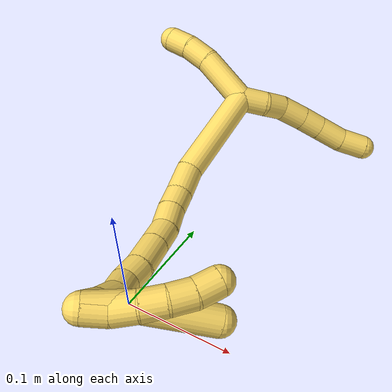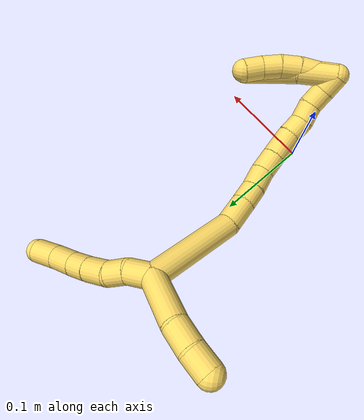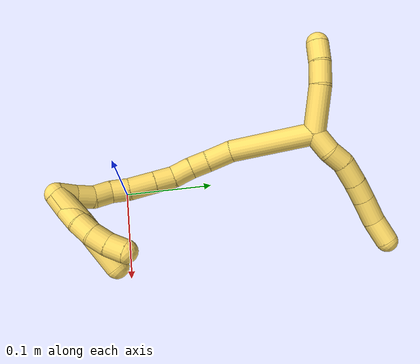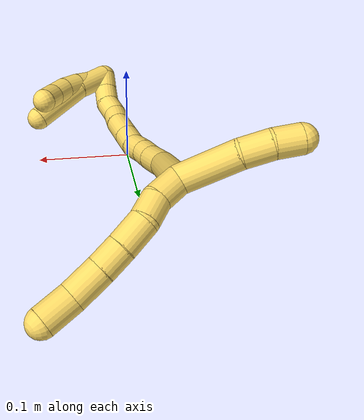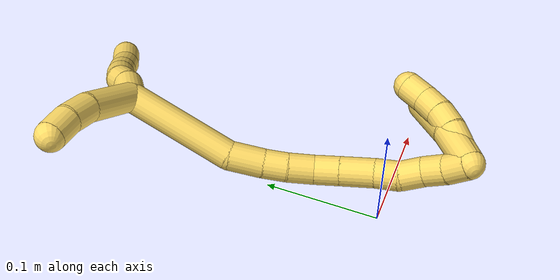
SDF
<sdf version="1.7">
 <world name="default">
  <model name="5">
   <static>0</static>
   <link name="5">
    <collision name="collision-cylinder-e_1_2_8">
     <pose>0.002233 0.000143 0.012327 -0.011601 0.179187 -0.001042</pose>
     <geometry><cylinder><radius>0.0125</radius><length>0.025056</length></cylinder></geometry>
     <surface>
      <friction><ode><mu>1.16</mu><mu2>1.16</mu2><slip1>0</slip1><slip2>0</slip2></ode></friction>
      <contact><ode><kp>1e+06</kp><kd>1</kd><max_vel>0</max_vel><min_depth>0.001</min_depth></ode></contact>
     </surface>
    </collision>
    <visual name="visual-cylinder-e_1_2_8">
     <pose>0.002233 0.000143 0.012327 -0.011601 0.179187 -0.001042</pose>
     <geometry><cylinder><radius>0.0125</radius><length>0.025056</length></cylinder></geometry>
     <material><ambient>1 0.858824 0.4 1</ambient></material>
    </visual>
    <collision name="collision-cylinder-e_2_8_9">
     <pose>0.007531 0.003312 0.034335 -0.302952 0.293433 -0.045108</pose>
     <geometry><cylinder><radius>0.0125</radius><length>0.021193</length></cylinder></geometry>
     <surface>
      <friction><ode><mu>1.16</mu><mu2>1.16</mu2><slip1>0</slip1><slip2>0</slip2></ode></friction>
      <contact><ode><kp>1e+06</kp><kd>1</kd><max_vel>0</max_vel><min_depth>0.001</min_depth></ode></contact>
     </surface>
    </collision>
    <visual name="visual-cylinder-e_2_8_9">
     <pose>0.007531 0.003312 0.034335 -0.302952 0.293433 -0.045108</pose>
     <geometry><cylinder><radius>0.0125</radius><length>0.021193</length></cylinder></geometry>
     <material><ambient>1 0.858824 0.4 1</ambient></material>
    </visual>
    <collision name="collision-cylinder-e_3_9_10">
     <pose>0.016018 0.00623 0.055905 0.009155 0.427888 0.001989</pose>
     <geometry><cylinder><radius>0.0125</radius><length>0.026134</length></cylinder></geometry>
     <surface>
      <friction><ode><mu>1.16</mu><mu2>1.16</mu2><slip1>0</slip1><slip2>0</slip2></ode></friction>
      <contact><ode><kp>1e+06</kp><kd>1</kd><max_vel>0</max_vel><min_depth>0.001</min_depth></ode></contact>
     </surface>
    </collision>
    <visual name="visual-cylinder-e_3_9_10">
     <pose>0.016018 0.00623 0.055905 0.009155 0.427888 0.001989</pose>
     <geometry><cylinder><radius>0.0125</radius><length>0.026134</length></cylinder></geometry>
     <material><ambient>1 0.858824 0.4 1</ambient></material>
    </visual>
    <collision name="collision-cylinder-e_4_10_11">
     <pose>0.026137 0.005355 0.077652 0.077519 0.44344 0.017483</pose>
     <geometry><cylinder><radius>0.0125</radius><length>0.021894</length></cylinder></geometry>
     <surface>
      <friction><ode><mu>1.16</mu><mu2>1.16</mu2><slip1>0</slip1><slip2>0</slip2></ode></friction>
      <contact><ode><kp>1e+06</kp><kd>1</kd><max_vel>0</max_vel><min_depth>0.001</min_depth></ode></contact>
     </surface>
    </collision>
    <visual name="visual-cylinder-e_4_10_11">
     <pose>0.026137 0.005355 0.077652 0.077519 0.44344 0.017483</pose>
     <geometry><cylinder><radius>0.0125</radius><length>0.021894</length></cylinder></geometry>
     <material><ambient>1 0.858824 0.4 1</ambient></material>
    </visual>
    <collision name="collision-cylinder-e_5_11_12">
     <pose>0.03664 0.002949 0.1003 0.127541 0.423076 0.027425</pose>
     <geometry><cylinder><radius>0.0125</radius><length>0.028283</length></cylinder></geometry>
     <surface>
      <friction><ode><mu>1.16</mu><mu2>1.16</mu2><slip1>0</slip1><slip2>0</slip2></ode></friction>
      <contact><ode><kp>1e+06</kp><kd>1</kd><max_vel>0</max_vel><min_depth>0.001</min_depth></ode></contact>
     </surface>
    </collision>
    <visual name="visual-cylinder-e_5_11_12">
     <pose>0.03664 0.002949 0.1003 0.127541 0.423076 0.027425</pose>
     <geometry><cylinder><radius>0.0125</radius><length>0.028283</length></cylinder></geometry>
     <material><ambient>1 0.858824 0.4 1</ambient></material>
    </visual>
    <collision name="collision-cylinder-e_6_12_6">
     <pose>0.045751 0.000141 0.126355 0.087849 0.243287 0.010746</pose>
     <geometry><cylinder><radius>0.0125</radius><length>0.02744</length></cylinder></geometry>
     <surface>
      <friction><ode><mu>1.16</mu><mu2>1.16</mu2><slip1>0</slip1><slip2>0</slip2></ode></friction>
      <contact><ode><kp>1e+06</kp><kd>1</kd><max_vel>0</max_vel><min_depth>0.001</min_depth></ode></contact>
     </surface>
    </collision>
    <visual name="visual-cylinder-e_6_12_6">
     <pose>0.045751 0.000141 0.126355 0.087849 0.243287 0.010746</pose>
     <geometry><cylinder><radius>0.0125</radius><length>0.02744</length></cylinder></geometry>
     <material><ambient>1 0.858824 0.4 1</ambient></material>
    </visual>
    <collision name="collision-cylinder-e_1_2_13">
     <pose>-0.012006 0.016765 -0.016657 -2.35297 -0.470062 1.04438</pose>
     <geometry><cylinder><radius>0.0125</radius><length>0.053015</length></cylinder></geometry>
     <surface>
      <friction><ode><mu>1.16</mu><mu2>1.16</mu2><slip1>0</slip1><slip2>0</slip2></ode></friction>
      <contact><ode><kp>1e+06</kp><kd>1</kd><max_vel>0</max_vel><min_depth>0.001</min_depth></ode></contact>
     </surface>
    </collision>
    <visual name="visual-cylinder-e_1_2_13">
     <pose>-0.012006 0.016765 -0.016657 -2.35297 -0.470062 1.04438</pose>
     <geometry><cylinder><radius>0.0125</radius><length>0.053015</length></cylinder></geometry>
     <material><ambient>1 0.858824 0.4 1</ambient></material>
    </visual>
    <collision name="collision-cylinder-e_2_13_14">
     <pose>-0.027417 0.041116 -0.042501 -2.45133 -0.278313 0.742987</pose>
     <geometry><cylinder><radius>0.0125</radius><length>0.024784</length></cylinder></geometry>
     <surface>
      <friction><ode><mu>1.16</mu><mu2>1.16</mu2><slip1>0</slip1><slip2>0</slip2></ode></friction>
      <contact><ode><kp>1e+06</kp><kd>1</kd><max_vel>0</max_vel><min_depth>0.001</min_depth></ode></contact>
     </surface>
    </collision>
    <visual name="visual-cylinder-e_2_13_14">
     <pose>-0.027417 0.041116 -0.042501 -2.45133 -0.278313 0.742987</pose>
     <geometry><cylinder><radius>0.0125</radius><length>0.024784</length></cylinder></geometry>
     <material><ambient>1 0.858824 0.4 1</ambient></material>
    </visual>
    <collision name="collision-cylinder-e_3_14_5">
     <pose>-0.031861 0.055325 -0.060537 -2.49914 -0.093719 0.280011</pose>
     <geometry><cylinder><radius>0.0125</radius><length>0.0222</length></cylinder></geometry>
     <surface>
      <friction><ode><mu>1.16</mu><mu2>1.16</mu2><slip1>0</slip1><slip2>0</slip2></ode></friction>
      <contact><ode><kp>1e+06</kp><kd>1</kd><max_vel>0</max_vel><min_depth>0.001</min_depth></ode></contact>
     </surface>
    </collision>
    <visual name="visual-cylinder-e_3_14_5">
     <pose>-0.031861 0.055325 -0.060537 -2.49914 -0.093719 0.280011</pose>
     <geometry><cylinder><radius>0.0125</radius><length>0.0222</length></cylinder></geometry>
     <material><ambient>1 0.858824 0.4 1</ambient></material>
    </visual>
    <collision name="collision-cylinder-e_1_2_15">
     <pose>0.023028 -0.033232 -0.025572 2.22666 0.502212 0.960721</pose>
     <geometry><cylinder><radius>0.0125</radius><length>0.09568</length></cylinder></geometry>
     <surface>
      <friction><ode><mu>1.16</mu><mu2>1.16</mu2><slip1>0</slip1><slip2>0</slip2></ode></friction>
      <contact><ode><kp>1e+06</kp><kd>1</kd><max_vel>0</max_vel><min_depth>0.001</min_depth></ode></contact>
     </surface>
    </collision>
    <visual name="visual-cylinder-e_1_2_15">
     <pose>0.023028 -0.033232 -0.025572 2.22666 0.502212 0.960721</pose>
     <geometry><cylinder><radius>0.0125</radius><length>0.09568</length></cylinder></geometry>
     <material><ambient>1 0.858824 0.4 1</ambient></material>
    </visual>
    <collision name="collision-cylinder-e_2_15_16">
     <pose>0.050869 -0.079518 -0.056105 1.93396 0.331855 0.47637</pose>
     <geometry><cylinder><radius>0.0125</radius><length>0.029539</length></cylinder></geometry>
     <surface>
      <friction><ode><mu>1.16</mu><mu2>1.16</mu2><slip1>0</slip1><slip2>0</slip2></ode></friction>
      <contact><ode><kp>1e+06</kp><kd>1</kd><max_vel>0</max_vel><min_depth>0.001</min_depth></ode></contact>
     </surface>
    </collision>
    <visual name="visual-cylinder-e_2_15_16">
     <pose>0.050869 -0.079518 -0.056105 1.93396 0.331855 0.47637</pose>
     <geometry><cylinder><radius>0.0125</radius><length>0.029539</length></cylinder></geometry>
     <material><ambient>1 0.858824 0.4 1</ambient></material>
    </visual>
    <collision name="collision-cylinder-e_3_16_17">
     <pose>0.058077 -0.101693 -0.064548 1.93548 0.240673 0.347645</pose>
     <geometry><cylinder><radius>0.0125</radius><length>0.02011</length></cylinder></geometry>
     <surface>
      <friction><ode><mu>1.16</mu><mu2>1.16</mu2><slip1>0</slip1><slip2>0</slip2></ode></friction>
      <contact><ode><kp>1e+06</kp><kd>1</kd><max_vel>0</max_vel><min_depth>0.001</min_depth></ode></contact>
     </surface>
    </collision>
    <visual name="visual-cylinder-e_3_16_17">
     <pose>0.058077 -0.101693 -0.064548 1.93548 0.240673 0.347645</pose>
     <geometry><cylinder><radius>0.0125</radius><length>0.02011</length></cylinder></geometry>
     <material><ambient>1 0.858824 0.4 1</ambient></material>
    </visual>
    <collision name="collision-cylinder-e_4_17_18">
     <pose>0.063084 -0.121437 -0.070801 1.82598 0.233443 0.301234</pose>
     <geometry><cylinder><radius>0.0125</radius><length>0.022563</length></cylinder></geometry>
     <surface>
      <friction><ode><mu>1.16</mu><mu2>1.16</mu2><slip1>0</slip1><slip2>0</slip2></ode></friction>
      <contact><ode><kp>1e+06</kp><kd>1</kd><max_vel>0</max_vel><min_depth>0.001</min_depth></ode></contact>
     </surface>
    </collision>
    <visual name="visual-cylinder-e_4_17_18">
     <pose>0.063084 -0.121437 -0.070801 1.82598 0.233443 0.301234</pose>
     <geometry><cylinder><radius>0.0125</radius><length>0.022563</length></cylinder></geometry>
     <material><ambient>1 0.858824 0.4 1</ambient></material>
    </visual>
    <collision name="collision-cylinder-e_5_18_19">
     <pose>0.066163 -0.142063 -0.077967 1.98466 0.042962 0.06578</pose>
     <geometry><cylinder><radius>0.0125</radius><length>0.021878</length></cylinder></geometry>
     <surface>
      <friction><ode><mu>1.16</mu><mu2>1.16</mu2><slip1>0</slip1><slip2>0</slip2></ode></friction>
      <contact><ode><kp>1e+06</kp><kd>1</kd><max_vel>0</max_vel><min_depth>0.001</min_depth></ode></contact>
     </surface>
    </collision>
    <visual name="visual-cylinder-e_5_18_19">
     <pose>0.066163 -0.142063 -0.077967 1.98466 0.042962 0.06578</pose>
     <geometry><cylinder><radius>0.0125</radius><length>0.021878</length></cylinder></geometry>
     <material><ambient>1 0.858824 0.4 1</ambient></material>
    </visual>
    <collision name="collision-cylinder-e_6_19_20">
     <pose>0.067299 -0.165392 -0.088279 1.98875 0.045671 0.07024</pose>
     <geometry><cylinder><radius>0.0125</radius><length>0.029188</length></cylinder></geometry>
     <surface>
      <friction><ode><mu>1.16</mu><mu2>1.16</mu2><slip1>0</slip1><slip2>0</slip2></ode></friction>
      <contact><ode><kp>1e+06</kp><kd>1</kd><max_vel>0</max_vel><min_depth>0.001</min_depth></ode></contact>
     </surface>
    </collision>
    <visual name="visual-cylinder-e_6_19_20">
     <pose>0.067299 -0.165392 -0.088279 1.98875 0.045671 0.07024</pose>
     <geometry><cylinder><radius>0.0125</radius><length>0.029188</length></cylinder></geometry>
     <material><ambient>1 0.858824 0.4 1</ambient></material>
    </visual>
    <collision name="collision-cylinder-e_7_20_21">
     <pose>0.068065 -0.187299 -0.099489 2.12341 0.009854 0.017654</pose>
     <geometry><cylinder><radius>0.0125</radius><length>0.020168</length></cylinder></geometry>
     <surface>
      <friction><ode><mu>1.16</mu><mu2>1.16</mu2><slip1>0</slip1><slip2>0</slip2></ode></friction>
      <contact><ode><kp>1e+06</kp><kd>1</kd><max_vel>0</max_vel><min_depth>0.001</min_depth></ode></contact>
     </surface>
    </collision>
    <visual name="visual-cylinder-e_7_20_21">
     <pose>0.068065 -0.187299 -0.099489 2.12341 0.009854 0.017654</pose>
     <geometry><cylinder><radius>0.0125</radius><length>0.020168</length></cylinder></geometry>
     <material><ambient>1 0.858824 0.4 1</ambient></material>
    </visual>
    <collision name="collision-cylinder-e_8_21_22">
     <pose>0.06622 -0.205398 -0.107776 1.87556 -0.192481 -0.261637</pose>
     <geometry><cylinder><radius>0.0125</radius><length>0.020329</length></cylinder></geometry>
     <surface>
      <friction><ode><mu>1.16</mu><mu2>1.16</mu2><slip1>0</slip1><slip2>0</slip2></ode></friction>
      <contact><ode><kp>1e+06</kp><kd>1</kd><max_vel>0</max_vel><min_depth>0.001</min_depth></ode></contact>
     </surface>
    </collision>
    <visual name="visual-cylinder-e_8_21_22">
     <pose>0.06622 -0.205398 -0.107776 1.87556 -0.192481 -0.261637</pose>
     <geometry><cylinder><radius>0.0125</radius><length>0.020329</length></cylinder></geometry>
     <material><ambient>1 0.858824 0.4 1</ambient></material>
    </visual>
    <collision name="collision-cylinder-e_9_22_23">
     <pose>0.060796 -0.222712 -0.116454 2.20077 -0.346076 -0.662175</pose>
     <geometry><cylinder><radius>0.0125</radius><length>0.020513</length></cylinder></geometry>
     <surface>
      <friction><ode><mu>1.16</mu><mu2>1.16</mu2><slip1>0</slip1><slip2>0</slip2></ode></friction>
      <contact><ode><kp>1e+06</kp><kd>1</kd><max_vel>0</max_vel><min_depth>0.001</min_depth></ode></contact>
     </surface>
    </collision>
    <visual name="visual-cylinder-e_9_22_23">
     <pose>0.060796 -0.222712 -0.116454 2.20077 -0.346076 -0.662175</pose>
     <geometry><cylinder><radius>0.0125</radius><length>0.020513</length></cylinder></geometry>
     <material><ambient>1 0.858824 0.4 1</ambient></material>
    </visual>
    <collision name="collision-cylinder-e_10_23_1">
     <pose>0.052384 -0.237478 -0.127374 2.21507 -0.514926 -0.970223</pose>
     <geometry><cylinder><radius>0.0125</radius><length>0.020033</length></cylinder></geometry>
     <surface>
      <friction><ode><mu>1.16</mu><mu2>1.16</mu2><slip1>0</slip1><slip2>0</slip2></ode></friction>
      <contact><ode><kp>1e+06</kp><kd>1</kd><max_vel>0</max_vel><min_depth>0.001</min_depth></ode></contact>
     </surface>
    </collision>
    <visual name="visual-cylinder-e_10_23_1">
     <pose>0.052384 -0.237478 -0.127374 2.21507 -0.514926 -0.970223</pose>
     <geometry><cylinder><radius>0.0125</radius><length>0.020033</length></cylinder></geometry>
     <material><ambient>1 0.858824 0.4 1</ambient></material>
    </visual>
    <collision name="collision-cylinder-e_1_1_24">
     <pose>0.047904 -0.244976 -0.122634 0.052856 0.04527 0.001197</pose>
     <geometry><cylinder><radius>0.0125</radius><length>0.02</length></cylinder></geometry>
     <surface>
      <friction><ode><mu>1.16</mu><mu2>1.16</mu2><slip1>0</slip1><slip2>0</slip2></ode></friction>
      <contact><ode><kp>1e+06</kp><kd>1</kd><max_vel>0</max_vel><min_depth>0.001</min_depth></ode></contact>
     </surface>
    </collision>
    <visual name="visual-cylinder-e_1_1_24">
     <pose>0.047904 -0.244976 -0.122634 0.052856 0.04527 0.001197</pose>
     <geometry><cylinder><radius>0.0125</radius><length>0.02</length></cylinder></geometry>
     <material><ambient>1 0.858824 0.4 1</ambient></material>
    </visual>
    <collision name="collision-cylinder-e_2_24_25">
     <pose>0.046075 -0.245781 -0.102926 0.028409 -0.230204 -0.003285</pose>
     <geometry><cylinder><radius>0.0125</radius><length>0.02</length></cylinder></geometry>
     <surface>
      <friction><ode><mu>1.16</mu><mu2>1.16</mu2><slip1>0</slip1><slip2>0</slip2></ode></friction>
      <contact><ode><kp>1e+06</kp><kd>1</kd><max_vel>0</max_vel><min_depth>0.001</min_depth></ode></contact>
     </surface>
    </collision>
    <visual name="visual-cylinder-e_2_24_25">
     <pose>0.046075 -0.245781 -0.102926 0.028409 -0.230204 -0.003285</pose>
     <geometry><cylinder><radius>0.0125</radius><length>0.02</length></cylinder></geometry>
     <material><ambient>1 0.858824 0.4 1</ambient></material>
    </visual>
    <collision name="collision-cylinder-e_3_25_26">
     <pose>0.042152 -0.245021 -0.083384 -0.105258 -0.164854 0.008704</pose>
     <geometry><cylinder><radius>0.0125</radius><length>0.02</length></cylinder></geometry>
     <surface>
      <friction><ode><mu>1.16</mu><mu2>1.16</mu2><slip1>0</slip1><slip2>0</slip2></ode></friction>
      <contact><ode><kp>1e+06</kp><kd>1</kd><max_vel>0</max_vel><min_depth>0.001</min_depth></ode></contact>
     </surface>
    </collision>
    <visual name="visual-cylinder-e_3_25_26">
     <pose>0.042152 -0.245021 -0.083384 -0.105258 -0.164854 0.008704</pose>
     <geometry><cylinder><radius>0.0125</radius><length>0.02</length></cylinder></geometry>
     <material><ambient>1 0.858824 0.4 1</ambient></material>
    </visual>
    <collision name="collision-cylinder-e_4_26_27">
     <pose>0.039503 -0.241311 -0.063991 -0.272089 -0.100904 0.013824</pose>
     <geometry><cylinder><radius>0.0125</radius><length>0.02</length></cylinder></geometry>
     <surface>
      <friction><ode><mu>1.16</mu><mu2>1.16</mu2><slip1>0</slip1><slip2>0</slip2></ode></friction>
      <contact><ode><kp>1e+06</kp><kd>1</kd><max_vel>0</max_vel><min_depth>0.001</min_depth></ode></contact>
     </surface>
    </collision>
    <visual name="visual-cylinder-e_4_26_27">
     <pose>0.039503 -0.241311 -0.063991 -0.272089 -0.100904 0.013824</pose>
     <geometry><cylinder><radius>0.0125</radius><length>0.02</length></cylinder></geometry>
     <material><ambient>1 0.858824 0.4 1</ambient></material>
    </visual>
    <collision name="collision-cylinder-e_5_27_4">
     <pose>0.036409 -0.234482 -0.045555 -0.438745 -0.210247 0.047042</pose>
     <geometry><cylinder><radius>0.0125</radius><length>0.02</length></cylinder></geometry>
     <surface>
      <friction><ode><mu>1.16</mu><mu2>1.16</mu2><slip1>0</slip1><slip2>0</slip2></ode></friction>
      <contact><ode><kp>1e+06</kp><kd>1</kd><max_vel>0</max_vel><min_depth>0.001</min_depth></ode></contact>
     </surface>
    </collision>
    <visual name="visual-cylinder-e_5_27_4">
     <pose>0.036409 -0.234482 -0.045555 -0.438745 -0.210247 0.047042</pose>
     <geometry><cylinder><radius>0.0125</radius><length>0.02</length></cylinder></geometry>
     <material><ambient>1 0.858824 0.4 1</ambient></material>
    </visual>
    <collision name="collision-cylinder-e_1_1_28">
     <pose>0.04706 -0.243808 -0.112616 -0.032003 -0.019563 0.000313</pose>
     <geometry><cylinder><radius>0.0125</radius><length>0.040016</length></cylinder></geometry>
     <surface>
      <friction><ode><mu>1.16</mu><mu2>1.16</mu2><slip1>0</slip1><slip2>0</slip2></ode></friction>
      <contact><ode><kp>1e+06</kp><kd>1</kd><max_vel>0</max_vel><min_depth>0.001</min_depth></ode></contact>
     </surface>
    </collision>
    <visual name="visual-cylinder-e_1_1_28">
     <pose>0.04706 -0.243808 -0.112616 -0.032003 -0.019563 0.000313</pose>
     <geometry><cylinder><radius>0.0125</radius><length>0.040016</length></cylinder></geometry>
     <material><ambient>1 0.858824 0.4 1</ambient></material>
    </visual>
    <collision name="collision-cylinder-e_2_28_3">
     <pose>0.053831 -0.243284 -0.063499 0.003974 0.241133 0.000481</pose>
     <geometry><cylinder><radius>0.0125</radius><length>0.059984</length></cylinder></geometry>
     <surface>
      <friction><ode><mu>1.16</mu><mu2>1.16</mu2><slip1>0</slip1><slip2>0</slip2></ode></friction>
      <contact><ode><kp>1e+06</kp><kd>1</kd><max_vel>0</max_vel><min_depth>0.001</min_depth></ode></contact>
     </surface>
    </collision>
    <visual name="visual-cylinder-e_2_28_3">
     <pose>0.053831 -0.243284 -0.063499 0.003974 0.241133 0.000481</pose>
     <geometry><cylinder><radius>0.0125</radius><length>0.059984</length></cylinder></geometry>
     <material><ambient>1 0.858824 0.4 1</ambient></material>
    </visual>
    <collision name="collision-sphere-3">
     <pose>0.060993 -0.2434 -0.034374 0 -0 0</pose>
     <geometry><sphere><radius>0.0125</radius></sphere></geometry>
     <surface>
      <friction><ode><mu>1.16</mu><mu2>1.16</mu2><slip1>0</slip1><slip2>0</slip2></ode></friction>
      <contact><ode><kp>1e+06</kp><kd>1</kd><max_vel>0</max_vel><min_depth>0.001</min_depth></ode></contact>
     </surface>
    </collision>
    <visual name="visual-sphere-3">
     <pose>0.060993 -0.2434 -0.034374 0 -0 0</pose>
     <geometry><sphere><radius>0.0125</radius></sphere></geometry>
     <material><ambient>1 0.858824 0.4 1</ambient></material>
    </visual>
    <collision name="collision-sphere-28">
     <pose>0.046669 -0.243168 -0.092623 0 -0 0</pose>
     <geometry><sphere><radius>0.0125</radius></sphere></geometry>
     <surface>
      <friction><ode><mu>1.16</mu><mu2>1.16</mu2><slip1>0</slip1><slip2>0</slip2></ode></friction>
      <contact><ode><kp>1e+06</kp><kd>1</kd><max_vel>0</max_vel><min_depth>0.001</min_depth></ode></contact>
     </surface>
    </collision>
    <visual name="visual-sphere-28">
     <pose>0.046669 -0.243168 -0.092623 0 -0 0</pose>
     <geometry><sphere><radius>0.0125</radius></sphere></geometry>
     <material><ambient>1 0.858824 0.4 1</ambient></material>
    </visual>
    <collision name="collision-sphere-4">
     <pose>0.034322 -0.230328 -0.036701 0 -0 0</pose>
     <geometry><sphere><radius>0.0125</radius></sphere></geometry>
     <surface>
      <friction><ode><mu>1.16</mu><mu2>1.16</mu2><slip1>0</slip1><slip2>0</slip2></ode></friction>
      <contact><ode><kp>1e+06</kp><kd>1</kd><max_vel>0</max_vel><min_depth>0.001</min_depth></ode></contact>
     </surface>
    </collision>
    <visual name="visual-sphere-4">
     <pose>0.034322 -0.230328 -0.036701 0 -0 0</pose>
     <geometry><sphere><radius>0.0125</radius></sphere></geometry>
     <material><ambient>1 0.858824 0.4 1</ambient></material>
    </visual>
    <collision name="collision-sphere-27">
     <pose>0.038496 -0.238637 -0.054408 0 -0 0</pose>
     <geometry><sphere><radius>0.0125</radius></sphere></geometry>
     <surface>
      <friction><ode><mu>1.16</mu><mu2>1.16</mu2><slip1>0</slip1><slip2>0</slip2></ode></friction>
      <contact><ode><kp>1e+06</kp><kd>1</kd><max_vel>0</max_vel><min_depth>0.001</min_depth></ode></contact>
     </surface>
    </collision>
    <visual name="visual-sphere-27">
     <pose>0.038496 -0.238637 -0.054408 0 -0 0</pose>
     <geometry><sphere><radius>0.0125</radius></sphere></geometry>
     <material><ambient>1 0.858824 0.4 1</ambient></material>
    </visual>
    <collision name="collision-sphere-26">
     <pose>0.040511 -0.243984 -0.073574 0 -0 0</pose>
     <geometry><sphere><radius>0.0125</radius></sphere></geometry>
     <surface>
      <friction><ode><mu>1.16</mu><mu2>1.16</mu2><slip1>0</slip1><slip2>0</slip2></ode></friction>
      <contact><ode><kp>1e+06</kp><kd>1</kd><max_vel>0</max_vel><min_depth>0.001</min_depth></ode></contact>
     </surface>
    </collision>
    <visual name="visual-sphere-26">
     <pose>0.040511 -0.243984 -0.073574 0 -0 0</pose>
     <geometry><sphere><radius>0.0125</radius></sphere></geometry>
     <material><ambient>1 0.858824 0.4 1</ambient></material>
    </visual>
    <collision name="collision-sphere-25">
     <pose>0.043793 -0.246057 -0.093194 0 -0 0</pose>
     <geometry><sphere><radius>0.0125</radius></sphere></geometry>
     <surface>
      <friction><ode><mu>1.16</mu><mu2>1.16</mu2><slip1>0</slip1><slip2>0</slip2></ode></friction>
      <contact><ode><kp>1e+06</kp><kd>1</kd><max_vel>0</max_vel><min_depth>0.001</min_depth></ode></contact>
     </surface>
    </collision>
    <visual name="visual-sphere-25">
     <pose>0.043793 -0.246057 -0.093194 0 -0 0</pose>
     <geometry><sphere><radius>0.0125</radius></sphere></geometry>
     <material><ambient>1 0.858824 0.4 1</ambient></material>
    </visual>
    <collision name="collision-sphere-24">
     <pose>0.048356 -0.245504 -0.112659 0 -0 0</pose>
     <geometry><sphere><radius>0.0125</radius></sphere></geometry>
     <surface>
      <friction><ode><mu>1.16</mu><mu2>1.16</mu2><slip1>0</slip1><slip2>0</slip2></ode></friction>
      <contact><ode><kp>1e+06</kp><kd>1</kd><max_vel>0</max_vel><min_depth>0.001</min_depth></ode></contact>
     </surface>
    </collision>
    <visual name="visual-sphere-24">
     <pose>0.048356 -0.245504 -0.112659 0 -0 0</pose>
     <geometry><sphere><radius>0.0125</radius></sphere></geometry>
     <material><ambient>1 0.858824 0.4 1</ambient></material>
    </visual>
    <collision name="collision-sphere-1">
     <pose>0.047451 -0.244448 -0.13261 0 -0 0</pose>
     <geometry><sphere><radius>0.0125</radius></sphere></geometry>
     <surface>
      <friction><ode><mu>1.16</mu><mu2>1.16</mu2><slip1>0</slip1><slip2>0</slip2></ode></friction>
      <contact><ode><kp>1e+06</kp><kd>1</kd><max_vel>0</max_vel><min_depth>0.001</min_depth></ode></contact>
     </surface>
    </collision>
    <visual name="visual-sphere-1">
     <pose>0.047451 -0.244448 -0.13261 0 -0 0</pose>
     <geometry><sphere><radius>0.0125</radius></sphere></geometry>
     <material><ambient>1 0.858824 0.4 1</ambient></material>
    </visual>
    <collision name="collision-sphere-23">
     <pose>0.057317 -0.230508 -0.122138 0 -0 0</pose>
     <geometry><sphere><radius>0.0125</radius></sphere></geometry>
     <surface>
      <friction><ode><mu>1.16</mu><mu2>1.16</mu2><slip1>0</slip1><slip2>0</slip2></ode></friction>
      <contact><ode><kp>1e+06</kp><kd>1</kd><max_vel>0</max_vel><min_depth>0.001</min_depth></ode></contact>
     </surface>
    </collision>
    <visual name="visual-sphere-23">
     <pose>0.057317 -0.230508 -0.122138 0 -0 0</pose>
     <geometry><sphere><radius>0.0125</radius></sphere></geometry>
     <material><ambient>1 0.858824 0.4 1</ambient></material>
    </visual>
    <collision name="collision-sphere-22">
     <pose>0.064275 -0.214915 -0.11077 0 -0 0</pose>
     <geometry><sphere><radius>0.0125</radius></sphere></geometry>
     <surface>
      <friction><ode><mu>1.16</mu><mu2>1.16</mu2><slip1>0</slip1><slip2>0</slip2></ode></friction>
      <contact><ode><kp>1e+06</kp><kd>1</kd><max_vel>0</max_vel><min_depth>0.001</min_depth></ode></contact>
     </surface>
    </collision>
    <visual name="visual-sphere-22">
     <pose>0.064275 -0.214915 -0.11077 0 -0 0</pose>
     <geometry><sphere><radius>0.0125</radius></sphere></geometry>
     <material><ambient>1 0.858824 0.4 1</ambient></material>
    </visual>
    <collision name="collision-sphere-21">
     <pose>0.068164 -0.195881 -0.104782 0 -0 0</pose>
     <geometry><sphere><radius>0.0125</radius></sphere></geometry>
     <surface>
      <friction><ode><mu>1.16</mu><mu2>1.16</mu2><slip1>0</slip1><slip2>0</slip2></ode></friction>
      <contact><ode><kp>1e+06</kp><kd>1</kd><max_vel>0</max_vel><min_depth>0.001</min_depth></ode></contact>
     </surface>
    </collision>
    <visual name="visual-sphere-21">
     <pose>0.068164 -0.195881 -0.104782 0 -0 0</pose>
     <geometry><sphere><radius>0.0125</radius></sphere></geometry>
     <material><ambient>1 0.858824 0.4 1</ambient></material>
    </visual>
    <collision name="collision-sphere-12">
     <pose>0.042445 0.001309 0.11309 0 -0 0</pose>
     <geometry><sphere><radius>0.0125</radius></sphere></geometry>
     <surface>
      <friction><ode><mu>1.16</mu><mu2>1.16</mu2><slip1>0</slip1><slip2>0</slip2></ode></friction>
      <contact><ode><kp>1e+06</kp><kd>1</kd><max_vel>0</max_vel><min_depth>0.001</min_depth></ode></contact>
     </surface>
    </collision>
    <visual name="visual-sphere-12">
     <pose>0.042445 0.001309 0.11309 0 -0 0</pose>
     <geometry><sphere><radius>0.0125</radius></sphere></geometry>
     <material><ambient>1 0.858824 0.4 1</ambient></material>
    </visual>
    <collision name="collision-sphere-11">
     <pose>0.030834 0.004589 0.087511 0 -0 0</pose>
     <geometry><sphere><radius>0.0125</radius></sphere></geometry>
     <surface>
      <friction><ode><mu>1.16</mu><mu2>1.16</mu2><slip1>0</slip1><slip2>0</slip2></ode></friction>
      <contact><ode><kp>1e+06</kp><kd>1</kd><max_vel>0</max_vel><min_depth>0.001</min_depth></ode></contact>
     </surface>
    </collision>
    <visual name="visual-sphere-11">
     <pose>0.030834 0.004589 0.087511 0 -0 0</pose>
     <geometry><sphere><radius>0.0125</radius></sphere></geometry>
     <material><ambient>1 0.858824 0.4 1</ambient></material>
    </visual>
    <collision name="collision-sphere-10">
     <pose>0.02144 0.006121 0.067793 0 -0 0</pose>
     <geometry><sphere><radius>0.0125</radius></sphere></geometry>
     <surface>
      <friction><ode><mu>1.16</mu><mu2>1.16</mu2><slip1>0</slip1><slip2>0</slip2></ode></friction>
      <contact><ode><kp>1e+06</kp><kd>1</kd><max_vel>0</max_vel><min_depth>0.001</min_depth></ode></contact>
     </surface>
    </collision>
    <visual name="visual-sphere-10">
     <pose>0.02144 0.006121 0.067793 0 -0 0</pose>
     <geometry><sphere><radius>0.0125</radius></sphere></geometry>
     <material><ambient>1 0.858824 0.4 1</ambient></material>
    </visual>
    <collision name="collision-sphere-9">
     <pose>0.010596 0.006338 0.044017 0 -0 0</pose>
     <geometry><sphere><radius>0.0125</radius></sphere></geometry>
     <surface>
      <friction><ode><mu>1.16</mu><mu2>1.16</mu2><slip1>0</slip1><slip2>0</slip2></ode></friction>
      <contact><ode><kp>1e+06</kp><kd>1</kd><max_vel>0</max_vel><min_depth>0.001</min_depth></ode></contact>
     </surface>
    </collision>
    <visual name="visual-sphere-9">
     <pose>0.010596 0.006338 0.044017 0 -0 0</pose>
     <geometry><sphere><radius>0.0125</radius></sphere></geometry>
     <material><ambient>1 0.858824 0.4 1</ambient></material>
    </visual>
    <collision name="collision-sphere-2">
     <geometry><sphere><radius>0.0125</radius></sphere></geometry>
     <surface>
      <friction><ode><mu>1.16</mu><mu2>1.16</mu2><slip1>0</slip1><slip2>0</slip2></ode></friction>
      <contact><ode><kp>1e+06</kp><kd>1</kd><max_vel>0</max_vel><min_depth>0.001</min_depth></ode></contact>
     </surface>
    </collision>
    <visual name="visual-sphere-2">
     <geometry><sphere><radius>0.0125</radius></sphere></geometry>
     <material><ambient>1 0.858824 0.4 1</ambient></material>
    </visual>
    <collision name="collision-sphere-19">
     <pose>0.066633 -0.152069 -0.082362 0 -0 0</pose>
     <geometry><sphere><radius>0.0125</radius></sphere></geometry>
     <surface>
      <friction><ode><mu>1.16</mu><mu2>1.16</mu2><slip1>0</slip1><slip2>0</slip2></ode></friction>
      <contact><ode><kp>1e+06</kp><kd>1</kd><max_vel>0</max_vel><min_depth>0.001</min_depth></ode></contact>
     </surface>
    </collision>
    <visual name="visual-sphere-19">
     <pose>0.066633 -0.152069 -0.082362 0 -0 0</pose>
     <geometry><sphere><radius>0.0125</radius></sphere></geometry>
     <material><ambient>1 0.858824 0.4 1</ambient></material>
    </visual>
    <collision name="collision-sphere-8">
     <pose>0.004466 0.000286 0.024653 0 -0 0</pose>
     <geometry><sphere><radius>0.0125</radius></sphere></geometry>
     <surface>
      <friction><ode><mu>1.16</mu><mu2>1.16</mu2><slip1>0</slip1><slip2>0</slip2></ode></friction>
      <contact><ode><kp>1e+06</kp><kd>1</kd><max_vel>0</max_vel><min_depth>0.001</min_depth></ode></contact>
     </surface>
    </collision>
    <visual name="visual-sphere-8">
     <pose>0.004466 0.000286 0.024653 0 -0 0</pose>
     <geometry><sphere><radius>0.0125</radius></sphere></geometry>
     <material><ambient>1 0.858824 0.4 1</ambient></material>
    </visual>
    <collision name="collision-sphere-6">
     <pose>0.049056 -0.001028 0.139619 0 -0 0</pose>
     <geometry><sphere><radius>0.0125</radius></sphere></geometry>
     <surface>
      <friction><ode><mu>1.16</mu><mu2>1.16</mu2><slip1>0</slip1><slip2>0</slip2></ode></friction>
      <contact><ode><kp>1e+06</kp><kd>1</kd><max_vel>0</max_vel><min_depth>0.001</min_depth></ode></contact>
     </surface>
    </collision>
    <visual name="visual-sphere-6">
     <pose>0.049056 -0.001028 0.139619 0 -0 0</pose>
     <geometry><sphere><radius>0.0125</radius></sphere></geometry>
     <material><ambient>1 0.858824 0.4 1</ambient></material>
    </visual>
    <collision name="collision-sphere-13">
     <pose>-0.024013 0.033529 -0.033314 0 -0 0</pose>
     <geometry><sphere><radius>0.0125</radius></sphere></geometry>
     <surface>
      <friction><ode><mu>1.16</mu><mu2>1.16</mu2><slip1>0</slip1><slip2>0</slip2></ode></friction>
      <contact><ode><kp>1e+06</kp><kd>1</kd><max_vel>0</max_vel><min_depth>0.001</min_depth></ode></contact>
     </surface>
    </collision>
    <visual name="visual-sphere-13">
     <pose>-0.024013 0.033529 -0.033314 0 -0 0</pose>
     <geometry><sphere><radius>0.0125</radius></sphere></geometry>
     <material><ambient>1 0.858824 0.4 1</ambient></material>
    </visual>
    <collision name="collision-sphere-14">
     <pose>-0.030822 0.048703 -0.051689 0 -0 0</pose>
     <geometry><sphere><radius>0.0125</radius></sphere></geometry>
     <surface>
      <friction><ode><mu>1.16</mu><mu2>1.16</mu2><slip1>0</slip1><slip2>0</slip2></ode></friction>
      <contact><ode><kp>1e+06</kp><kd>1</kd><max_vel>0</max_vel><min_depth>0.001</min_depth></ode></contact>
     </surface>
    </collision>
    <visual name="visual-sphere-14">
     <pose>-0.030822 0.048703 -0.051689 0 -0 0</pose>
     <geometry><sphere><radius>0.0125</radius></sphere></geometry>
     <material><ambient>1 0.858824 0.4 1</ambient></material>
    </visual>
    <collision name="collision-sphere-5">
     <pose>-0.032899 0.061946 -0.069385 0 -0 0</pose>
     <geometry><sphere><radius>0.0125</radius></sphere></geometry>
     <surface>
      <friction><ode><mu>1.16</mu><mu2>1.16</mu2><slip1>0</slip1><slip2>0</slip2></ode></friction>
      <contact><ode><kp>1e+06</kp><kd>1</kd><max_vel>0</max_vel><min_depth>0.001</min_depth></ode></contact>
     </surface>
    </collision>
    <visual name="visual-sphere-5">
     <pose>-0.032899 0.061946 -0.069385 0 -0 0</pose>
     <geometry><sphere><radius>0.0125</radius></sphere></geometry>
     <material><ambient>1 0.858824 0.4 1</ambient></material>
    </visual>
    <collision name="collision-sphere-15">
     <pose>0.046057 -0.066465 -0.051145 0 -0 0</pose>
     <geometry><sphere><radius>0.0125</radius></sphere></geometry>
     <surface>
      <friction><ode><mu>1.16</mu><mu2>1.16</mu2><slip1>0</slip1><slip2>0</slip2></ode></friction>
      <contact><ode><kp>1e+06</kp><kd>1</kd><max_vel>0</max_vel><min_depth>0.001</min_depth></ode></contact>
     </surface>
    </collision>
    <visual name="visual-sphere-15">
     <pose>0.046057 -0.066465 -0.051145 0 -0 0</pose>
     <geometry><sphere><radius>0.0125</radius></sphere></geometry>
     <material><ambient>1 0.858824 0.4 1</ambient></material>
    </visual>
    <collision name="collision-sphere-16">
     <pose>0.055681 -0.092571 -0.061066 0 -0 0</pose>
     <geometry><sphere><radius>0.0125</radius></sphere></geometry>
     <surface>
      <friction><ode><mu>1.16</mu><mu2>1.16</mu2><slip1>0</slip1><slip2>0</slip2></ode></friction>
      <contact><ode><kp>1e+06</kp><kd>1</kd><max_vel>0</max_vel><min_depth>0.001</min_depth></ode></contact>
     </surface>
    </collision>
    <visual name="visual-sphere-16">
     <pose>0.055681 -0.092571 -0.061066 0 -0 0</pose>
     <geometry><sphere><radius>0.0125</radius></sphere></geometry>
     <material><ambient>1 0.858824 0.4 1</ambient></material>
    </visual>
    <collision name="collision-sphere-17">
     <pose>0.060474 -0.110816 -0.068031 0 -0 0</pose>
     <geometry><sphere><radius>0.0125</radius></sphere></geometry>
     <surface>
      <friction><ode><mu>1.16</mu><mu2>1.16</mu2><slip1>0</slip1><slip2>0</slip2></ode></friction>
      <contact><ode><kp>1e+06</kp><kd>1</kd><max_vel>0</max_vel><min_depth>0.001</min_depth></ode></contact>
     </surface>
    </collision>
    <visual name="visual-sphere-17">
     <pose>0.060474 -0.110816 -0.068031 0 -0 0</pose>
     <geometry><sphere><radius>0.0125</radius></sphere></geometry>
     <material><ambient>1 0.858824 0.4 1</ambient></material>
    </visual>
    <collision name="collision-sphere-18">
     <pose>0.065693 -0.132057 -0.073572 0 -0 0</pose>
     <geometry><sphere><radius>0.0125</radius></sphere></geometry>
     <surface>
      <friction><ode><mu>1.16</mu><mu2>1.16</mu2><slip1>0</slip1><slip2>0</slip2></ode></friction>
      <contact><ode><kp>1e+06</kp><kd>1</kd><max_vel>0</max_vel><min_depth>0.001</min_depth></ode></contact>
     </surface>
    </collision>
    <visual name="visual-sphere-18">
     <pose>0.065693 -0.132057 -0.073572 0 -0 0</pose>
     <geometry><sphere><radius>0.0125</radius></sphere></geometry>
     <material><ambient>1 0.858824 0.4 1</ambient></material>
    </visual>
    <collision name="collision-sphere-20">
     <pose>0.067966 -0.178716 -0.094197 0 -0 0</pose>
     <geometry><sphere><radius>0.0125</radius></sphere></geometry>
     <surface>
      <friction><ode><mu>1.16</mu><mu2>1.16</mu2><slip1>0</slip1><slip2>0</slip2></ode></friction>
      <contact><ode><kp>1e+06</kp><kd>1</kd><max_vel>0</max_vel><min_depth>0.001</min_depth></ode></contact>
     </surface>
    </collision>
    <visual name="visual-sphere-20">
     <pose>0.067966 -0.178716 -0.094197 0 -0 0</pose>
     <geometry><sphere><radius>0.0125</radius></sphere></geometry>
     <material><ambient>1 0.858824 0.4 1</ambient></material>
    </visual>
    <inertial>
     <pose>0.03407 -0.107375 -0.039845 0 -0 0</pose>
     <mass>0.75</mass>
     <inertia><ixx>0.000185</ixx><ixy>0</ixy><ixz>0</ixz><iyy>9.3e-05</iyy><iyz>0</iyz><izz>2.8e-05</izz></inertia>
    </inertial>
   </link>
   <pose>-0.015086 0.216831 0.080001 -2.54438 1.39957 -1.91636</pose>
  </model>
 </world>
</sdf>
